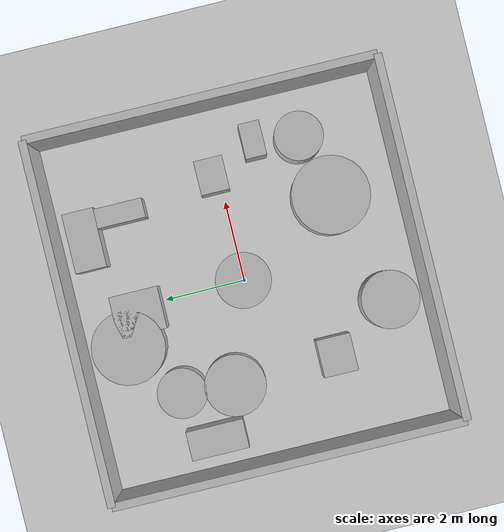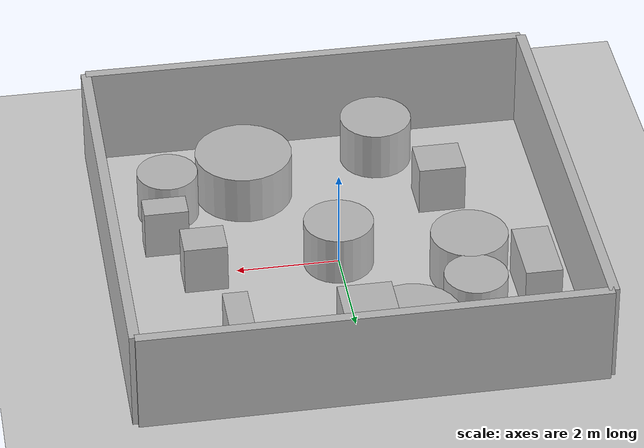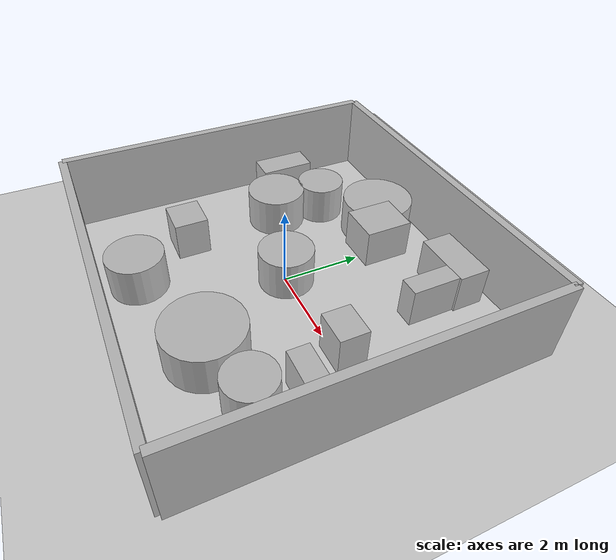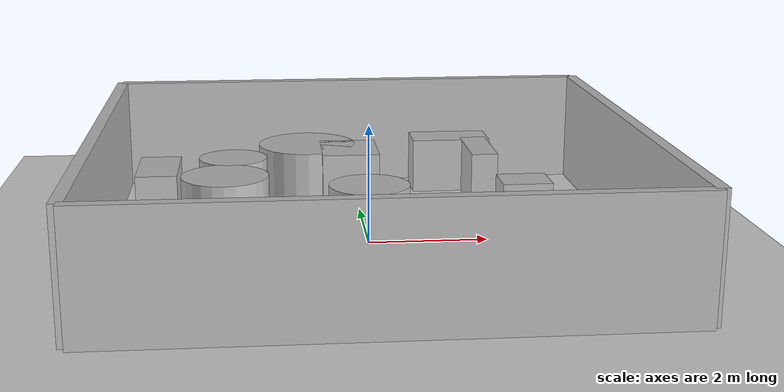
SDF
<?xml version="1.0"?>
<sdf version="1.6">
  <world name="env_21">

    <include><uri>model://ground_plane</uri></include>
    <include><uri>model://sun</uri></include>

    <!-- WALLS -->
    <model name="wall_north"><static>true</static><pose>0 4.269010036539062 1 0 0 0</pose>
      <link name="link"><collision name="collision">
        <geometry><box><size>8.81461183639943 0.2 2</size></box></geometry>
      </collision><visual name="visual">
        <geometry><box><size>8.81461183639943 0.2 2</size></box></geometry>
      </visual></link>
    </model>

    <model name="wall_south"><static>true</static><pose>0 -4.269010036539062 1 0 0 0</pose>
      <link name="link"><collision name="collision">
        <geometry><box><size>8.81461183639943 0.2 2</size></box></geometry>
      </collision><visual name="visual">
        <geometry><box><size>8.81461183639943 0.2 2</size></box></geometry>
      </visual></link>
    </model>

    <model name="wall_east"><static>true</static><pose>4.407305918199715 0 1 0 0 1.57</pose>
      <link name="link"><collision name="collision">
        <geometry><box><size>8.538020073078124 0.2 2</size></box></geometry>
      </collision><visual name="visual">
        <geometry><box><size>8.538020073078124 0.2 2</size></box></geometry>
      </visual></link>
    </model>

    <model name="wall_west"><static>true</static><pose>-4.407305918199715 0 1 0 0 1.57</pose>
      <link name="link"><collision name="collision">
        <geometry><box><size>8.538020073078124 0.2 2</size></box></geometry>
      </collision><visual name="visual">
        <geometry><box><size>8.538020073078124 0.2 2</size></box></geometry>
      </visual></link>
    </model>

    <!-- SENSOR -->

    <model name="lidar_sensor">
      <static>true</static>
      <pose>-2.7476001514421204 -3.3908827714843484 0.4 0 0 0</pose>
      <link name="link">
        <sensor name="lidar" type="ray">
          <pose>0 0 0 0 0 0</pose>
          <visualize>true</visualize>
          <always_on>true</always_on>
          <update_rate>10</update_rate>
          <ray>
            <scan><horizontal>
              <samples>90</samples>
              <resolution>1</resolution>
              <min_angle>-3.14159</min_angle>
              <max_angle>3.14159</max_angle>
            </horizontal></scan>
            <range><min>0.15</min><max>20.0</max><resolution>0.01</resolution></range>
          </ray>
          <plugin name="lidar_plugin" filename="liblidar_plugin.so"/>
        </sensor>
      </link>
    </model>

    <!-- OBSTACLES -->

    <model name="obstacle_0">
      <static>true</static>
      <pose>3.2522454541814074 -0.9847350214335413 0.5 0 0 0</pose>
      <link name="link">
        <collision name="collision">
          <geometry><box><size>0.86 0.52 1.0</size></box></geometry>
        </collision>
        <visual name="visual">
          <geometry><box><size>0.86 0.52 1.0</size></box></geometry>
        </visual>
      </link>
    </model>

    <model name="obstacle_1">
      <static>true</static>
      <pose>0.013893564412457593 0.028891814110119984 0.5 0 0 0</pose>
      <link name="link">
        <collision name="collision">
          <geometry><cylinder><radius>0.68</radius><length>1.0</length></cylinder></geometry>
        </collision>
        <visual name="visual">
          <geometry><cylinder><radius>0.68</radius><length>1.0</length></cylinder></geometry>
        </visual>
      </link>
    </model>

    <model name="obstacle_2">
      <static>true</static>
      <pose>-0.9107144240092961 3.1009205445515295 0.5 0 0 0</pose>
      <link name="link">
        <collision name="collision">
          <geometry><cylinder><radius>0.9</radius><length>1.0</length></cylinder></geometry>
        </collision>
        <visual name="visual">
          <geometry><cylinder><radius>0.9</radius><length>1.0</length></cylinder></geometry>
        </visual>
      </link>
    </model>

    <model name="obstacle_3">
      <static>true</static>
      <pose>-1.274690383407389 -3.300501383665081 0.5 0 0 0</pose>
      <link name="link">
        <collision name="collision">
          <geometry><cylinder><radius>0.71</radius><length>1.0</length></cylinder></geometry>
        </collision>
        <visual name="visual">
          <geometry><cylinder><radius>0.71</radius><length>1.0</length></cylinder></geometry>
        </visual>
      </link>
    </model>

    <model name="obstacle_4">
      <static>true</static>
      <pose>1.5090377209672088 -2.5075978521798783 0.5 0 0 0</pose>
      <link name="link">
        <collision name="collision">
          <geometry><cylinder><radius>0.96</radius><length>1.0</length></cylinder></geometry>
        </collision>
        <visual name="visual">
          <geometry><cylinder><radius>0.96</radius><length>1.0</length></cylinder></geometry>
        </visual>
      </link>
    </model>

    <model name="obstacle_5">
      <static>true</static>
      <pose>-2.275178179428537 -1.734709070910509 0.5 0 0 0</pose>
      <link name="link">
        <collision name="collision">
          <geometry><box><size>0.92 0.84 1.0</size></box></geometry>
        </collision>
        <visual name="visual">
          <geometry><box><size>0.92 0.84 1.0</size></box></geometry>
        </visual>
      </link>
    </model>

    <model name="obstacle_6">
      <static>true</static>
      <pose>1.8521282623511137 3.5193982301634 0.5 0 0 0</pose>
      <link name="link">
        <collision name="collision">
          <geometry><box><size>1.46 0.77 1.0</size></box></geometry>
        </collision>
        <visual name="visual">
          <geometry><box><size>1.46 0.77 1.0</size></box></geometry>
        </visual>
      </link>
    </model>

    <model name="obstacle_7">
      <static>true</static>
      <pose>2.6493403848954538 0.1706446010452316 0.5 0 0 0</pose>
      <link name="link">
        <collision name="collision">
          <geometry><box><size>0.84 0.7 1.0</size></box></geometry>
        </collision>
        <visual name="visual">
          <geometry><box><size>0.84 0.7 1.0</size></box></geometry>
        </visual>
      </link>
    </model>

    <model name="obstacle_8">
      <static>true</static>
      <pose>-3.5654095764423714 1.5446762022902991 0.5 0 0 0</pose>
      <link name="link">
        <collision name="collision">
          <geometry><box><size>0.71 1.41 1.0</size></box></geometry>
        </collision>
        <visual name="visual">
          <geometry><box><size>0.71 1.41 1.0</size></box></geometry>
        </visual>
      </link>
    </model>

    <model name="obstacle_9">
      <static>true</static>
      <pose>-2.3953024826146003 0.8150041503765131 0.5 0 0 0</pose>
      <link name="link">
        <collision name="collision">
          <geometry><cylinder><radius>0.75</radius><length>1.0</length></cylinder></geometry>
        </collision>
        <visual name="visual">
          <geometry><cylinder><radius>0.75</radius><length>1.0</length></cylinder></geometry>
        </visual>
      </link>
    </model>

    <model name="obstacle_10">
      <static>true</static>
      <pose>-0.1407487402562806 2.6797347578705537 0.5 0 0 0</pose>
      <link name="link">
        <collision name="collision">
          <geometry><box><size>1.04 1.2 1.0</size></box></geometry>
        </collision>
        <visual name="visual">
          <geometry><box><size>1.04 1.2 1.0</size></box></geometry>
        </visual>
      </link>
    </model>

    <model name="obstacle_11">
      <static>true</static>
      <pose>-2.2763579420537017 2.0999464412733273 0.5 0 0 0</pose>
      <link name="link">
        <collision name="collision">
          <geometry><cylinder><radius>0.61</radius><length>1.0</length></cylinder></geometry>
        </collision>
        <visual name="visual">
          <geometry><cylinder><radius>0.61</radius><length>1.0</length></cylinder></geometry>
        </visual>
      </link>
    </model>

    <model name="obstacle_12">
      <static>true</static>
      <pose>3.0728527655828444 -2.0929714851242336 0.5 0 0 0</pose>
      <link name="link">
        <collision name="collision">
          <geometry><cylinder><radius>0.6</radius><length>1.0</length></cylinder></geometry>
        </collision>
        <visual name="visual">
          <geometry><cylinder><radius>0.6</radius><length>1.0</length></cylinder></geometry>
        </visual>
      </link>
    </model>

    <model name="obstacle_13">
      <static>true</static>
      <pose>2.2920434914463303 2.654277314996172 0.5 0 0 0</pose>
      <link name="link">
        <collision name="collision">
          <geometry><box><size>0.48 1.42 1.0</size></box></geometry>
        </collision>
        <visual name="visual">
          <geometry><box><size>0.48 1.42 1.0</size></box></geometry>
        </visual>
      </link>
    </model>

  </world>
</sdf>
